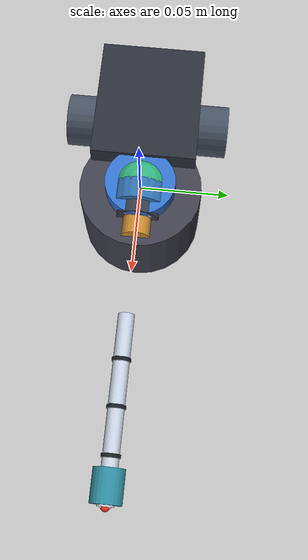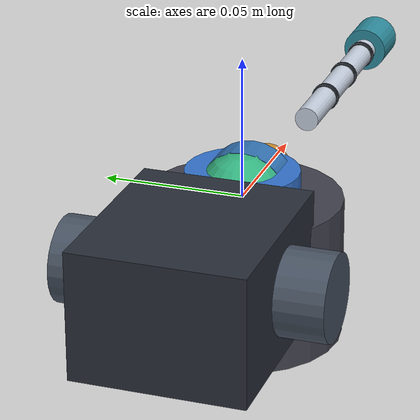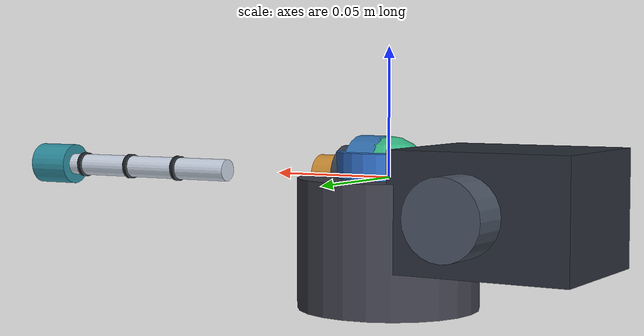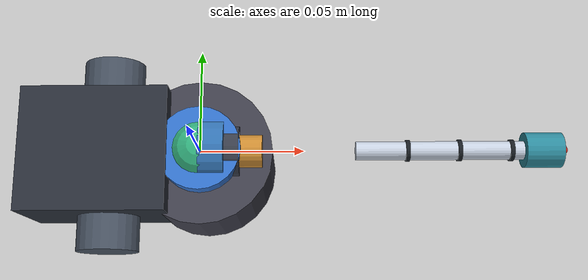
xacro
<?xml version="1.0"?>

<robot
  xmlns:xacro="http://www.ros.org/wiki/xacro"
  name="surgical_navigation_instrument">

  <xacro:property name="base_radius" value="0.035"/>
  <xacro:property name="base_height" value="0.05"/>

  <xacro:property name="yaw_radius" value="0.020"/>
  <xacro:property name="yaw_height" value="0.020"/>

  <xacro:property name="pitch_radius" value="0.016"/>

  <xacro:property name="roll_radius" value="0.008"/>
  <xacro:property name="roll_length" value="0.030"/>

  <xacro:property name="tool_radius" value="0.006"/>
  <xacro:property name="tool_visual_length" value="0.030"/>

  <xacro:property name="tip_radius" value="0.004"/>

  <!-- Visual-only surgical-instrument presentation geometry. -->
  <!-- These values do NOT modify validated collision geometry. -->
  <xacro:property name="display_shaft_length" value="0.10"/>
  <xacro:property name="display_shaft_radius" value="0.0045"/>
  <xacro:property name="display_wrist_radius" value="0.0085"/>
  <xacro:property name="display_wrist_length" value="0.018"/>
  <xacro:property name="display_trocar_radius" value="0.016"/>
  <xacro:property name="display_trocar_length" value="0.012"/>

  <!-- ROBOT BASE / RCM                                               -->

  <link name="robot_base">

    <visual>
      <origin
        xyz="0 0 -0.025"
        rpy="0 0 0"/>

      <geometry>
        <cylinder
          radius="${base_radius}"
          length="${base_height}"/>
      </geometry>

      <material name="base_material">
        <color rgba="0.25 0.25 0.30 1.0"/>
      </material>
    </visual>

    <!-- Visual-only compact actuator housing. -->
    <visual name="actuator_housing">
      <origin xyz="-0.050 0 -0.010" rpy="0 0 0"/>

      <geometry>
        <box size="0.070 0.060 0.045"/>
      </geometry>

      <material name="actuator_housing_material">
        <color rgba="0.16 0.18 0.22 1.0"/>
      </material>
    </visual>

    <!-- Left actuator module. -->
    <visual name="actuator_motor_left">
      <origin
        xyz="-0.045 0.038 -0.010"
        rpy="${pi / 2.0} 0 0"/>

      <geometry>
        <cylinder radius="0.015" length="0.018"/>
      </geometry>

      <material name="actuator_motor_left_material">
        <color rgba="0.28 0.32 0.38 1.0"/>
      </material>
    </visual>

    <!-- Right actuator module. -->
    <visual name="actuator_motor_right">
      <origin
        xyz="-0.045 -0.038 -0.010"
        rpy="${pi / 2.0} 0 0"/>

      <geometry>
        <cylinder radius="0.015" length="0.018"/>
      </geometry>

      <material name="actuator_motor_right_material">
        <color rgba="0.28 0.32 0.38 1.0"/>
      </material>
    </visual>

    <!--
      Visual representation of the trocar / RCM entry port.
      robot_base origin remains the actual RCM.
    -->
    <visual name="trocar_outer">
      <origin
        xyz="0.006 0 0"
        rpy="0 ${pi / 2.0} 0"/>

      <geometry>
        <cylinder
          radius="${display_trocar_radius}"
          length="${display_trocar_length}"/>
      </geometry>

      <material name="trocar_outer_material">
        <color rgba="0.20 0.45 0.70 1.0"/>
      </material>
    </visual>

    <visual name="trocar_inner">
      <origin
        xyz="0.014 0 0"
        rpy="0 ${pi / 2.0} 0"/>

      <geometry>
        <cylinder radius="0.010" length="0.010"/>
      </geometry>

      <material name="trocar_inner_material">
        <color rgba="0.70 0.75 0.82 1.0"/>
      </material>
    </visual>

    <collision>
      <origin
        xyz="0 0 -0.025"
        rpy="0 0 0"/>

      <geometry>
        <cylinder
          radius="${base_radius}"
          length="${base_height}"/>
      </geometry>
    </collision>

    <inertial>
      <origin
        xyz="0 0 -0.025"
        rpy="0 0 0"/>

      <mass value="0.30"/>

      <inertia
        ixx="0.00012"
        ixy="0.0"
        ixz="0.0"
        iyy="0.00012"
        iyz="0.0"
        izz="0.00018"/>
    </inertial>

  </link>

  <!-- YAW                                                            -->

  <link name="yaw_link">

    <visual>
      <geometry>
        <cylinder
          radius="${yaw_radius}"
          length="${yaw_height}"/>
      </geometry>

      <material name="yaw_material">
        <color rgba="0.20 0.45 0.80 1.0"/>
      </material>
    </visual>

    <collision>
      <geometry>
        <cylinder
          radius="${yaw_radius}"
          length="${yaw_height}"/>
      </geometry>
    </collision>

    <inertial>
      <mass value="0.08"/>

      <inertia
        ixx="0.00002"
        ixy="0.0"
        ixz="0.0"
        iyy="0.00002"
        iyz="0.0"
        izz="0.00002"/>
    </inertial>

  </link>

  <joint name="yaw_joint" type="revolute">

    <parent link="robot_base"/>
    <child link="yaw_link"/>

    <origin
      xyz="0 0 0"
      rpy="0 0 0"/>

    <axis xyz="0 0 1"/>

    <limit
      lower="${-pi / 3.0}"
      upper="${pi / 3.0}"
      effort="5.0"
      velocity="0.75"/>

    <dynamics
      damping="0.05"
      friction="0.01"/>

  </joint>

  <!-- PITCH                                                          -->

  <link name="pitch_link">

    <visual>
      <geometry>
        <sphere radius="${pitch_radius}"/>
      </geometry>

      <material name="pitch_material">
        <color rgba="0.20 0.70 0.50 1.0"/>
      </material>
    </visual>

    <collision>
      <geometry>
        <sphere radius="${pitch_radius}"/>
      </geometry>
    </collision>

    <inertial>
      <mass value="0.06"/>

      <inertia
        ixx="0.00001"
        ixy="0.0"
        ixz="0.0"
        iyy="0.00001"
        iyz="0.0"
        izz="0.00001"/>
    </inertial>

  </link>

  <!--
    Phase 2 uses:

        Rz(yaw) @ Ry(-pitch)

    Therefore positive Phase 2 pitch is represented by rotation
    around local -Y.
  -->

  <joint name="pitch_joint" type="revolute">

    <parent link="yaw_link"/>
    <child link="pitch_link"/>

    <origin
      xyz="0 0 0"
      rpy="0 0 0"/>

    <axis xyz="0 -1 0"/>

    <limit
      lower="${-pi / 4.0}"
      upper="${pi / 4.0}"
      effort="5.0"
      velocity="0.75"/>

    <dynamics
      damping="0.05"
      friction="0.01"/>

  </joint>

  <!-- ROLL                                                           -->

  <link name="roll_link">

    <visual>
      <origin
        xyz="0.015 0 0"
        rpy="0 ${pi / 2.0} 0"/>

      <geometry>
        <cylinder
          radius="${roll_radius}"
          length="${roll_length}"/>
      </geometry>

      <material name="roll_material">
        <color rgba="0.80 0.55 0.20 1.0"/>
      </material>
    </visual>

    <!-- Visual roll-actuator collar. -->
    <visual name="roll_actuator_collar">
      <origin
        xyz="0.013 0 0"
        rpy="0 ${pi / 2.0} 0"/>

      <geometry>
        <cylinder radius="0.012" length="0.012"/>
      </geometry>

      <material name="roll_actuator_collar_material">
        <color rgba="0.22 0.24 0.29 1.0"/>
      </material>
    </visual>

    <collision>
      <origin
        xyz="0.015 0 0"
        rpy="0 ${pi / 2.0} 0"/>

      <geometry>
        <cylinder
          radius="${roll_radius}"
          length="${roll_length}"/>
      </geometry>
    </collision>

    <inertial>
      <origin
        xyz="0.015 0 0"
        rpy="0 0 0"/>

      <mass value="0.04"/>

      <inertia
        ixx="0.000005"
        ixy="0.0"
        ixz="0.0"
        iyy="0.00001"
        iyz="0.0"
        izz="0.00001"/>
    </inertial>

  </link>

  <joint name="roll_joint" type="revolute">

    <parent link="pitch_link"/>
    <child link="roll_link"/>

    <origin
      xyz="0 0 0"
      rpy="0 0 0"/>

    <axis xyz="1 0 0"/>

    <limit
      lower="${-pi}"
      upper="${pi}"
      effort="3.0"
      velocity="1.5"/>

    <dynamics
      damping="0.03"
      friction="0.005"/>

  </joint>

  <!-- INSERTION                                                      -->

  <link name="instrument">

    <!--
      Visual shaft follows the 100 mm proximal shaft used by the
      research safety model. Collision geometry below remains unchanged.
    -->
    <visual name="long_surgical_shaft">
      <origin
        xyz="-0.050 0 0"
        rpy="0 ${pi / 2.0} 0"/>

      <geometry>
        <cylinder
          radius="${display_shaft_radius}"
          length="${display_shaft_length}"/>
      </geometry>

      <material name="instrument_material">
        <color rgba="0.78 0.82 0.88 1.0"/>
      </material>
    </visual>

    <!-- Distal wrist / tool-head housing. -->
    <visual name="distal_wrist">
      <origin
        xyz="-0.010 0 0"
        rpy="0 ${pi / 2.0} 0"/>

      <geometry>
        <cylinder
          radius="${display_wrist_radius}"
          length="${display_wrist_length}"/>
      </geometry>

      <material name="distal_wrist_material">
        <color rgba="0.18 0.55 0.62 1.0"/>
      </material>
    </visual>

    <!-- Shaft depth markers. -->
    <visual name="shaft_marker_25">
      <origin
        xyz="-0.025 0 0"
        rpy="0 ${pi / 2.0} 0"/>

      <geometry>
        <cylinder radius="0.0052" length="0.002"/>
      </geometry>

      <material name="shaft_marker_material">
        <color rgba="0.10 0.12 0.14 1.0"/>
      </material>
    </visual>

    <visual name="shaft_marker_50">
      <origin
        xyz="-0.050 0 0"
        rpy="0 ${pi / 2.0} 0"/>

      <geometry>
        <cylinder radius="0.0052" length="0.002"/>
      </geometry>

      <material name="shaft_marker_material_50">
        <color rgba="0.10 0.12 0.14 1.0"/>
      </material>
    </visual>

    <visual name="shaft_marker_75">
      <origin
        xyz="-0.075 0 0"
        rpy="0 ${pi / 2.0} 0"/>

      <geometry>
        <cylinder radius="0.0052" length="0.002"/>
      </geometry>

      <material name="shaft_marker_material_75">
        <color rgba="0.10 0.12 0.14 1.0"/>
      </material>
    </visual>

    <collision>
      <origin
        xyz="-0.015 0 0"
        rpy="0 ${pi / 2.0} 0"/>

      <geometry>
        <cylinder
          radius="${tool_radius}"
          length="${tool_visual_length}"/>
      </geometry>
    </collision>

    <inertial>
      <origin
        xyz="-0.015 0 0"
        rpy="0 0 0"/>

      <mass value="0.03"/>

      <inertia
        ixx="0.000001"
        ixy="0.0"
        ixz="0.0"
        iyy="0.00001"
        iyz="0.0"
        izz="0.00001"/>
    </inertial>

  </link>

  <joint name="insertion_joint" type="prismatic">

    <parent link="roll_link"/>
    <child link="instrument"/>

    <origin
      xyz="0 0 0"
      rpy="0 0 0"/>

    <axis xyz="1 0 0"/>

    <limit
      lower="0.05"
      upper="0.30"
      effort="10.0"
      velocity="0.08"/>

    <dynamics
      damping="0.10"
      friction="0.02"/>

  </joint>

  <!-- INSTRUMENT TIP                                                 -->

  <link name="instrument_tip">

    <!-- Kinematic tip marker. -->
    <visual name="kinematic_tip">
      <geometry>
        <sphere radius="0.0025"/>
      </geometry>

      <material name="tip_material">
        <color rgba="0.95 0.20 0.15 1.0"/>
      </material>
    </visual>

    <!--
      Visual micro-grasper jaws.
      These are presentation geometry only and are not articulated DOFs.
    -->
    <visual name="tool_jaw_left">
      <origin
        xyz="-0.006 0.0026 0"
        rpy="0 0 -0.12"/>

      <geometry>
        <box size="0.013 0.0023 0.003"/>
      </geometry>

      <material name="tool_jaw_left_material">
        <color rgba="0.82 0.86 0.90 1.0"/>
      </material>
    </visual>

    <visual name="tool_jaw_right">
      <origin
        xyz="-0.006 -0.0026 0"
        rpy="0 0 0.12"/>

      <geometry>
        <box size="0.013 0.0023 0.003"/>
      </geometry>

      <material name="tool_jaw_right_material">
        <color rgba="0.82 0.86 0.90 1.0"/>
      </material>
    </visual>

    <collision>
      <geometry>
        <sphere radius="${tip_radius}"/>
      </geometry>
    </collision>

    <inertial>
      <mass value="0.005"/>

      <inertia
        ixx="0.000001"
        ixy="0.0"
        ixz="0.0"
        iyy="0.000001"
        iyz="0.0"
        izz="0.000001"/>
    </inertial>

  </link>

  <joint
    name="instrument_tip_joint"
    type="fixed">

    <parent link="instrument"/>
    <child link="instrument_tip"/>

    <origin
      xyz="0 0 0"
      rpy="0 0 0"/>

  </joint>

  <!-- ROS 2 CONTROL                                                  -->

  <ros2_control
    name="GazeboSimSystem"
    type="system">

    <hardware>
      <plugin>gz_ros2_control/GazeboSimSystem</plugin>
    </hardware>

    <!-- ROS order: yaw, pitch, roll, insertion -->

    <joint name="yaw_joint">

      <command_interface name="position">
        <param name="min">${-pi / 3.0}</param>
        <param name="max">${pi / 3.0}</param>
      </command_interface>

      <state_interface name="position">
        <param name="initial_value">0.0</param>
      </state_interface>

      <state_interface name="velocity"/>

    </joint>

    <joint name="pitch_joint">

      <command_interface name="position">
        <param name="min">${-pi / 4.0}</param>
        <param name="max">${pi / 4.0}</param>
      </command_interface>

      <state_interface name="position">
        <param name="initial_value">0.0</param>
      </state_interface>

      <state_interface name="velocity"/>

    </joint>

    <joint name="roll_joint">

      <command_interface name="position">
        <param name="min">${-pi}</param>
        <param name="max">${pi}</param>
      </command_interface>

      <state_interface name="position">
        <param name="initial_value">0.0</param>
      </state_interface>

      <state_interface name="velocity"/>

    </joint>

    <joint name="insertion_joint">

      <command_interface name="position">
        <param name="min">0.05</param>
        <param name="max">0.30</param>
      </command_interface>

      <state_interface name="position">
        <param name="initial_value">0.05</param>
      </state_interface>

      <state_interface name="velocity"/>

    </joint>

  </ros2_control>

  <!-- GAZEBO HARMONIC                                                -->

  <gazebo>

    <plugin
      filename="libgz_ros2_control-system.so"
      name="gz_ros2_control::GazeboSimROS2ControlPlugin">

      <parameters>
        $(find surgical_navigation_description)/config/controllers.yaml
      </parameters>

      <controller_manager_name>
        controller_manager
      </controller_manager_name>

    </plugin>

  </gazebo>

</robot>
